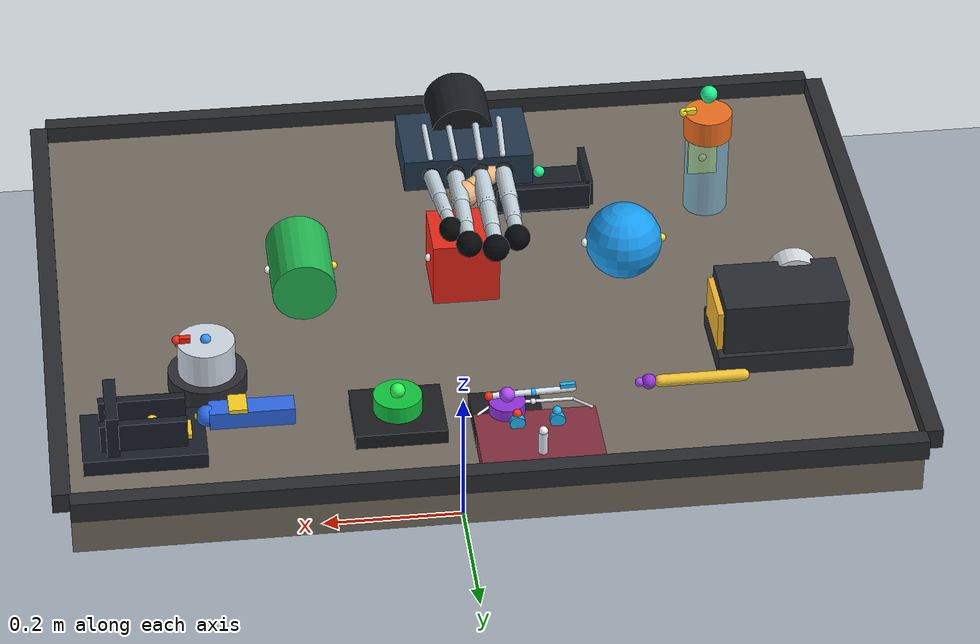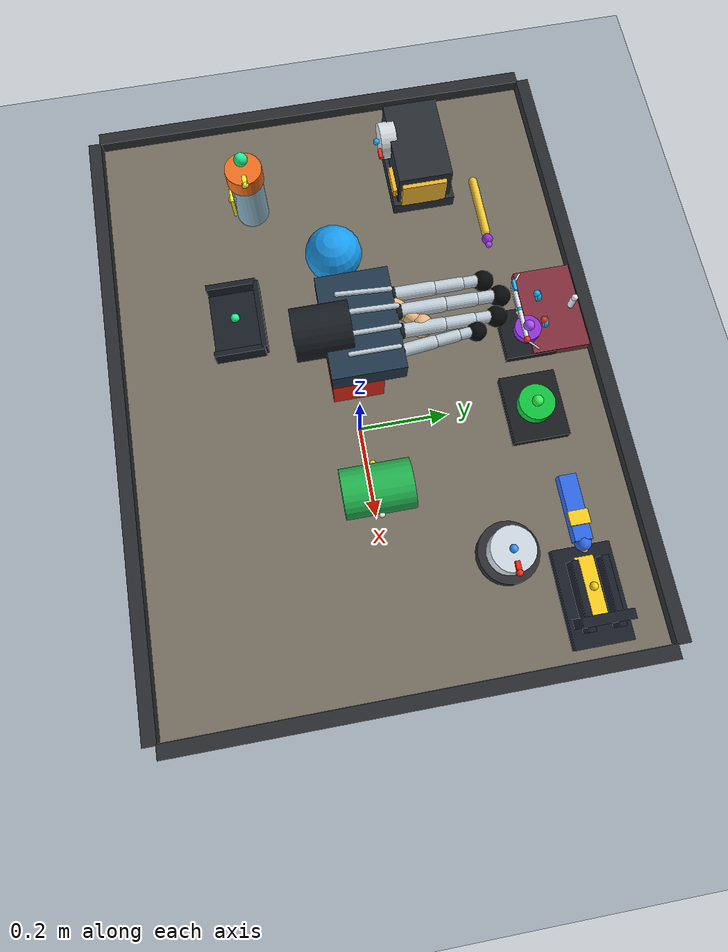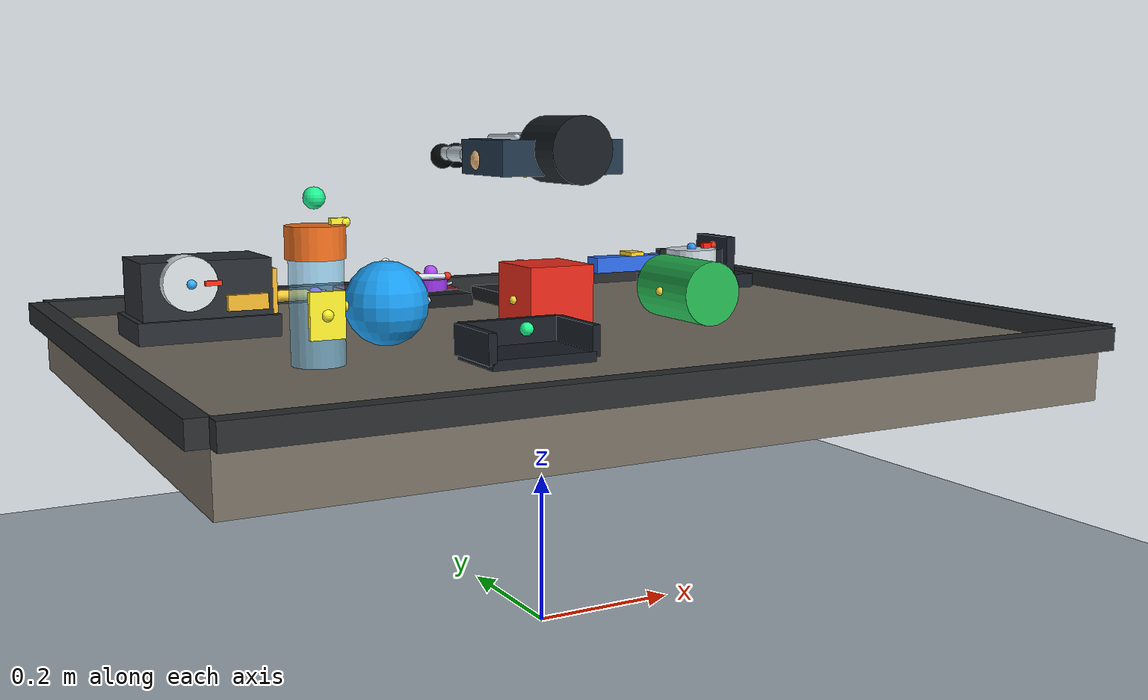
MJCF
<mujoco model="dexhand_lab">
  <compiler angle="degree" autolimits="true"/>
  <option timestep="0.01" integrator="RK4" gravity="0 0 -9.81"/>

  <visual>
    <global offwidth="1280" offheight="720"/>
    <quality shadowsize="2048"/>
  </visual>

  <default>
    <geom friction="1.0 0.04 0.004" solimp="0.9 0.95 0.001" solref="0.02 1"/>
    <joint damping="5" armature="0.01"/>
  </default>

  <asset>
    <texture name="grid_tex" type="2d" builtin="checker" rgb1="0.84 0.86 0.88" rgb2="0.68 0.72 0.76" width="256" height="256"/>
    <material name="floor_mat" texture="grid_tex" texrepeat="5 5" rgba="0.84 0.86 0.88 1"/>
    <material name="table_mat" rgba="0.46 0.43 0.38 1"/>
    <material name="palm_mat" rgba="0.13 0.22 0.30 1"/>
    <material name="finger_mat" rgba="0.78 0.84 0.88 1"/>
    <material name="thumb_mat" rgba="0.92 0.72 0.50 1"/>
    <material name="finger_joint_mat" rgba="0.10 0.12 0.14 1"/>
    <material name="pad_mat" rgba="0.03 0.035 0.04 1"/>
    <material name="sphere_mat" rgba="0.10 0.62 0.95 1"/>
    <material name="cube_mat" rgba="0.92 0.16 0.10 1"/>
    <material name="cylinder_mat" rgba="0.14 0.72 0.32 1"/>
    <material name="stylus_mat" rgba="0.95 0.78 0.20 1"/>
    <material name="button_mat" rgba="0.06 0.78 0.24 1"/>
    <material name="checkpoint_mat" rgba="0.58 0.20 0.88 1"/>
    <material name="cap_base_mat" rgba="0.18 0.18 0.20 1"/>
    <material name="cap_knob_mat" rgba="0.82 0.86 0.90 1"/>
    <material name="cap_marker_mat" rgba="1.00 0.12 0.05 1"/>
    <material name="assembly_plug_mat" rgba="0.18 0.42 0.92 1"/>
    <material name="assembly_socket_mat" rgba="0.10 0.12 0.16 1"/>
    <material name="assembly_marker_mat" rgba="1.00 0.82 0.12 1"/>
    <material name="lock_body_mat" rgba="0.16 0.18 0.20 1"/>
    <material name="lock_dial_mat" rgba="0.86 0.89 0.90 1"/>
    <material name="lock_marker_mat" rgba="1.00 0.18 0.08 1"/>
    <material name="lock_latch_mat" rgba="0.95 0.72 0.18 1"/>
    <material name="vial_glass_mat" rgba="0.50 0.82 1.00 0.58"/>
    <material name="vial_cap_mat" rgba="0.95 0.44 0.12 1"/>
    <material name="vial_marker_mat" rgba="1.00 0.95 0.18 1"/>
    <material name="sample_mat" rgba="0.12 0.96 0.58 1"/>
    <material name="delivery_tray_mat" rgba="0.10 0.12 0.15 1"/>
    <material name="suture_needle_mat" rgba="0.88 0.91 0.96 1"/>
    <material name="suture_tip_mat" rgba="1.00 0.20 0.10 1"/>
    <material name="suture_thread_mat" rgba="0.96 0.96 1.00 1"/>
    <material name="tissue_pad_mat" rgba="0.52 0.18 0.24 1"/>
    <material name="suture_marker_mat" rgba="0.12 0.75 1.00 1"/>
  </asset>

  <worldbody>
    <geom name="floor" type="plane" size="2.0 2.0 0.05" material="floor_mat"/>
    <light name="key_light" pos="0.0 -1.2 1.8" dir="0.0 0.4 -1" diffuse="0.95 0.95 0.92"/>
    <light name="fill_light" pos="-1.0 1.1 1.5" dir="0.5 -0.4 -1" diffuse="0.35 0.40 0.48"/>

    <camera name="front_camera" pos="0.58 -1.52 1.02" xyaxes="0.94 0.34 0 -0.17 0.47 0.86" fovy="66"/>
    <camera name="grasp_camera" pos="0.54 -1.36 0.98" xyaxes="0.94 0.34 0 -0.18 0.47 0.86" fovy="64"/>
    <camera name="cap_camera" pos="0.36 0.145 1.42" xyaxes="1 0 0 0 1 0" fovy="66"/>
    <camera name="assembly_camera" pos="0.76 -0.78 0.98" xyaxes="0.72 0.69 0 -0.38 0.42 0.82" fovy="64"/>
    <camera name="lock_camera" pos="-0.62 -0.86 0.96" xyaxes="0.82 -0.57 0 0.34 0.49 0.80" fovy="64"/>
    <camera name="suture_camera" pos="-0.56 -0.70 0.95" xyaxes="0.77 -0.64 0 0.33 0.39 0.86" fovy="63"/>
    <camera name="top_camera" pos="0.0 0.0 1.96" xyaxes="1 0 0 0 1 0" fovy="66"/>

    <body name="table" pos="0 0 0.36">
      <geom name="table_top" type="box" size="0.55 0.42 0.035" material="table_mat"/>
      <geom name="table_edge_front" type="box" pos="0 -0.43 0.045" size="0.55 0.012 0.014" rgba="0.16 0.17 0.18 1"/>
      <geom name="table_edge_back" type="box" pos="0 0.43 0.045" size="0.55 0.012 0.014" rgba="0.16 0.17 0.18 1"/>
      <geom name="table_edge_left" type="box" pos="-0.56 0 0.045" size="0.012 0.42 0.014" rgba="0.16 0.17 0.18 1"/>
      <geom name="table_edge_right" type="box" pos="0.56 0 0.045" size="0.012 0.42 0.014" rgba="0.16 0.17 0.18 1"/>
    </body>

    <body name="sphere_object" pos="-0.22 -0.01 0.447">
      <freejoint name="sphere_object_joint"/>
      <geom name="sphere_object_geom" type="sphere" size="0.052" material="sphere_mat" mass="0.060"/>
      <geom name="sphere_contact_thumb_marker" type="sphere" pos="-0.052 0 0" size="0.006" rgba="1 0.86 0.20 1" contype="0" conaffinity="0"/>
      <geom name="sphere_contact_finger_marker" type="sphere" pos="0.052 0 0" size="0.006" rgba="1 1 1 1" contype="0" conaffinity="0"/>
      <geom name="sphere_contact_lower_marker" type="sphere" pos="0 -0.030 -0.035" size="0.005" rgba="0.05 0.05 0.05 1" contype="0" conaffinity="0"/>
    </body>

    <body name="cube_object" pos="0.00 -0.01 0.440">
      <freejoint name="cube_object_joint"/>
      <geom name="cube_object_geom" type="box" size="0.045 0.045 0.045" material="cube_mat" mass="0.065"/>
      <geom name="cube_thumb_face_marker" type="sphere" pos="-0.046 0 0" size="0.0055" rgba="1 0.86 0.20 1" contype="0" conaffinity="0"/>
      <geom name="cube_opposing_face_marker" type="sphere" pos="0.046 0 0" size="0.0055" rgba="1 1 1 1" contype="0" conaffinity="0"/>
      <geom name="cube_lower_support_marker" type="sphere" pos="0 -0.026 -0.046" size="0.005" rgba="0.05 0.05 0.05 1" contype="0" conaffinity="0"/>
    </body>

    <body name="cylinder_object" pos="0.22 -0.01 0.438">
      <freejoint name="cylinder_object_joint"/>
      <geom name="cylinder_object_geom" type="cylinder" euler="90 0 0" size="0.043 0.060" material="cylinder_mat" mass="0.065"/>
      <geom name="cylinder_thumb_side_marker" type="sphere" pos="-0.044 0 0" size="0.0055" rgba="1 0.86 0.20 1" contype="0" conaffinity="0"/>
      <geom name="cylinder_opposing_side_marker" type="sphere" pos="0.044 0 0" size="0.0055" rgba="1 1 1 1" contype="0" conaffinity="0"/>
      <geom name="cylinder_lower_support_marker" type="sphere" pos="0 0 -0.044" size="0.005" rgba="0.05 0.05 0.05 1" contype="0" conaffinity="0"/>
    </body>

    <body name="stylus_tool" pos="-0.28 0.28 0.425">
      <freejoint name="stylus_tool_joint"/>
      <geom name="stylus_body_geom" type="capsule" fromto="-0.055 0 0 0.055 0 0" size="0.008" material="stylus_mat" mass="0.018"/>
      <geom name="stylus_tip_geom" type="sphere" pos="0.070 0 0" size="0.010" material="checkpoint_mat"/>
      <site name="stylus_tip_site" pos="0.082 0 0" size="0.006" rgba="0.7 0.3 1 1"/>
    </body>

    <body name="button_station" pos="0.12 0.29 0.405">
      <geom name="button_base_geom" type="box" size="0.060 0.050 0.010" rgba="0.10 0.11 0.12 1"/>
      <body name="button_plunger" pos="0 0 0.024">
        <joint name="button_joint" type="slide" axis="0 0 1" range="-0.018 0.002" damping="6"/>
        <geom name="button_geom" type="cylinder" size="0.032 0.012" material="button_mat"/>
        <site name="button_site" pos="0 0 0.018" size="0.010" rgba="0.2 1.0 0.35 1"/>
      </body>
    </body>

    <body name="checkpoint_target" pos="-0.02 0.31 0.405">
      <geom name="checkpoint_base_geom" type="box" size="0.046 0.046 0.009" rgba="0.10 0.11 0.12 1"/>
      <geom name="checkpoint_geom" type="cylinder" pos="0 0 0.020" size="0.024 0.008" material="checkpoint_mat"/>
      <site name="checkpoint_site" pos="0 0 0.038" size="0.010" rgba="0.7 0.3 1 1"/>
    </body>

    <body name="cap_knob_station" pos="0.36 0.185 0.405">
      <geom name="cap_knob_base_geom" type="cylinder" size="0.052 0.018" material="cap_base_mat"/>
      <body name="cap_knob" pos="0 0 0.040">
        <joint name="cap_knob_joint" type="hinge" axis="0 0 1" range="-6.2832 6.2832" damping="2.5"/>
        <geom name="cap_knob_geom" type="cylinder" size="0.038 0.026" material="cap_knob_mat" mass="0.030"/>
        <geom name="cap_marker_geom" type="box" pos="0.030 0 0.028" size="0.010 0.004 0.006" material="cap_marker_mat"/>
        <site name="cap_marker_site" pos="0.038 0 0.030" size="0.006" rgba="1 0.2 0.1 1"/>
        <site name="cap_center_site" pos="0 0 0.028" size="0.007" rgba="0.2 0.6 1 1"/>
      </body>
    </body>

    <body name="combination_lock_station" pos="-0.40 0.180 0.405">
      <geom name="combination_lock_base_geom" type="box" size="0.090 0.058 0.018" material="lock_body_mat"/>
      <geom name="combination_lock_face_geom" type="box" pos="0 0 0.052" size="0.082 0.050 0.038" material="lock_body_mat"/>
      <body name="combination_lock_dial" pos="-0.026 -0.052 0.064" euler="90 0 0">
        <joint name="combination_lock_dial_joint" type="hinge" axis="0 0 1" range="-6.2832 6.2832" damping="2.2"/>
        <geom name="combination_lock_dial_geom" type="cylinder" size="0.034 0.015" material="lock_dial_mat" mass="0.026"/>
        <geom name="combination_lock_dial_marker_geom" type="box" pos="0.027 0 0.017" size="0.010 0.003 0.004" material="lock_marker_mat"/>
        <site name="combination_lock_dial_site" pos="0 0 0.020" size="0.006" rgba="0.2 0.7 1 1"/>
      </body>
      <body name="combination_lock_latch" pos="0.048 -0.050 0.036">
        <joint name="combination_lock_latch_joint" type="slide" axis="1 0 0" range="0 0.030" damping="7"/>
        <geom name="combination_lock_latch_geom" type="box" size="0.026 0.008 0.010" material="lock_latch_mat" mass="0.015"/>
        <site name="combination_lock_latch_site" pos="0.024 0 0" size="0.005" rgba="1 0.82 0.12 1"/>
      </body>
      <body name="combination_lock_micro_door" pos="0.084 -0.002 0.045">
        <joint name="combination_lock_door_joint" type="hinge" axis="0 0 1" range="0 55" damping="3"/>
        <geom name="combination_lock_micro_door_geom" type="box" size="0.006 0.042 0.030" material="lock_latch_mat" mass="0.018"/>
        <site name="combination_lock_door_site" pos="0 0.036 0" size="0.005" rgba="0.2 1 0.3 1"/>
      </body>
      <site name="combination_lock_center_site" pos="-0.026 -0.052 0.064" size="0.007" rgba="1 0.2 0.1 1"/>
    </body>

    <body name="vial_body" pos="-0.355 -0.145 0.462">
      <freejoint name="vial_body_joint"/>
      <geom name="vial_body_geom" type="cylinder" size="0.030 0.058" material="vial_glass_mat" mass="0.050"/>
      <geom name="vial_body_label_geom" type="box" pos="0.000 -0.031 0.000" size="0.020 0.003 0.026" material="vial_marker_mat" contype="0" conaffinity="0"/>
      <site name="vial_grasp_site" pos="0 -0.032 0.000" size="0.007" rgba="1 0.95 0.18 1"/>
      <site name="vial_mouth_site" pos="0 0 0.064" size="0.007" rgba="0.6 0.9 1 1"/>
    </body>

    <body name="vial_cap" pos="-0.355 -0.145 0.538">
      <freejoint name="vial_cap_joint"/>
      <geom name="vial_cap_geom" type="cylinder" size="0.033 0.018" material="vial_cap_mat" mass="0.020"/>
      <geom name="vial_cap_stripe_geom" type="box" pos="0.026 0 0.020" size="0.009 0.004 0.005" material="vial_marker_mat" contype="0" conaffinity="0"/>
      <site name="vial_cap_marker_site" pos="0.034 0 0.020" size="0.006" rgba="1 0.95 0.18 1"/>
      <site name="vial_cap_center_site" pos="0 0 0" size="0.006" rgba="1 0.45 0.12 1"/>
    </body>

    <body name="micro_sample" pos="-0.355 -0.145 0.585">
      <freejoint name="micro_sample_joint"/>
      <geom name="micro_sample_geom" type="sphere" size="0.012" material="sample_mat" mass="0.006"/>
      <site name="micro_sample_site" pos="0 0 0" size="0.006" rgba="0.12 1 0.58 1"/>
    </body>

    <body name="delivery_tray" pos="-0.130 -0.205 0.405">
      <geom name="delivery_tray_floor_geom" type="box" size="0.065 0.045 0.006" material="delivery_tray_mat"/>
      <geom name="delivery_tray_back_geom" type="box" pos="0 0.045 0.018" size="0.065 0.005 0.018" material="delivery_tray_mat"/>
      <geom name="delivery_tray_left_geom" type="box" pos="-0.065 0 0.018" size="0.005 0.045 0.018" material="delivery_tray_mat"/>
      <geom name="delivery_tray_right_geom" type="box" pos="0.065 0 0.018" size="0.005 0.045 0.018" material="delivery_tray_mat"/>
      <site name="delivery_tray_target_site" pos="0 0 0.030" size="0.008" rgba="0.12 1 0.58 1"/>
    </body>

    <body name="microsuture_needle" pos="-0.055 0.302 0.438" euler="0 1.5708 0">
      <freejoint name="microsuture_needle_joint"/>
      <geom name="microsuture_needle_shaft_geom" type="capsule" fromto="-0.052 0 0 0.052 0 0" size="0.0042" material="suture_needle_mat" mass="0.006"/>
      <geom name="microsuture_needle_tip_geom" type="sphere" pos="0.058 0 0" size="0.006" material="suture_tip_mat"/>
      <geom name="microsuture_needle_tail_marker_geom" type="box" pos="-0.045 0 0.006" size="0.010 0.003 0.003" material="suture_marker_mat" contype="0" conaffinity="0"/>
      <site name="microsuture_needle_tip_site" pos="0.058 0 0" size="0.005" rgba="1 0.20 0.10 1"/>
      <site name="microsuture_needle_center_site" pos="0 0 0" size="0.005" rgba="0.12 0.75 1 1"/>
    </body>

    <body name="suture_thread" pos="-0.055 0.302 0.423">
      <freejoint name="suture_thread_joint"/>
      <geom name="suture_thread_span_geom" type="capsule" fromto="-0.052 0 0 0.052 0 0" size="0.0022" material="suture_thread_mat" mass="0.003"/>
      <geom name="suture_thread_loop_left_geom" type="capsule" fromto="-0.052 0 0 -0.074 0.020 0" size="0.0018" material="suture_thread_mat"/>
      <geom name="suture_thread_loop_right_geom" type="capsule" fromto="0.052 0 0 0.074 0.020 0" size="0.0018" material="suture_thread_mat"/>
      <site name="suture_thread_center_site" pos="0 0 0" size="0.004" rgba="0.96 0.96 1 1"/>
    </body>

    <body name="tissue_pad_station" pos="-0.055 0.365 0.405">
      <geom name="tissue_pad_geom" type="box" size="0.080 0.052 0.012" material="tissue_pad_mat"/>
      <geom name="suture_entry_eyelet_geom" type="cylinder" pos="-0.026 -0.020 0.019" euler="90 0 0" size="0.010 0.004" material="suture_marker_mat"/>
      <geom name="suture_exit_eyelet_geom" type="cylinder" pos="0.026 -0.020 0.019" euler="90 0 0" size="0.010 0.004" material="suture_marker_mat"/>
      <geom name="suture_anchor_post_geom" type="cylinder" pos="0 0.036 0.024" size="0.006 0.020" material="suture_needle_mat"/>
      <site name="suture_entry_site" pos="-0.026 -0.024 0.030" size="0.006" rgba="0.12 0.75 1 1"/>
      <site name="suture_exit_site" pos="0.026 -0.024 0.030" size="0.006" rgba="1 0.20 0.10 1"/>
      <site name="suture_tension_anchor_site" pos="0 0.036 0.046" size="0.006" rgba="1 1 1 1"/>
    </body>

    <body name="assembly_plug" pos="0.31 0.305 0.440">
      <freejoint name="assembly_plug_joint"/>
      <geom name="assembly_plug_geom" type="box" size="0.055 0.015 0.012" material="assembly_plug_mat" mass="0.026"/>
      <geom name="assembly_plug_round_tip_geom" type="sphere" pos="0.058 0 0" size="0.014" material="assembly_plug_mat"/>
      <geom name="assembly_plug_key_marker" type="box" pos="0.018 0 0.015" size="0.012 0.017 0.003" material="assembly_marker_mat" contype="0" conaffinity="0"/>
      <site name="assembly_plug_center_site" pos="0 0 0" size="0.006" rgba="0.2 0.7 1 1"/>
      <site name="assembly_plug_tip_site" pos="0.068 0 0" size="0.006" rgba="1 0.82 0.12 1"/>
    </body>

    <body name="assembly_socket_station" pos="0.45 0.305 0.405">
      <geom name="assembly_socket_base_geom" type="box" size="0.080 0.050 0.012" material="assembly_socket_mat"/>
      <geom name="assembly_socket_back_wall_geom" type="box" pos="0.040 0 0.040" size="0.008 0.043 0.032" material="assembly_socket_mat"/>
      <geom name="assembly_socket_left_guide_geom" type="box" pos="0 -0.025 0.030" size="0.056 0.006 0.022" material="assembly_socket_mat"/>
      <geom name="assembly_socket_right_guide_geom" type="box" pos="0 0.025 0.030" size="0.056 0.006 0.022" material="assembly_socket_mat"/>
      <geom name="assembly_socket_floor_marker_geom" type="box" pos="-0.010 0 0.015" size="0.052 0.016 0.003" material="assembly_marker_mat" contype="0" conaffinity="0"/>
      <site name="assembly_socket_center_site" pos="-0.012 0 0.034" size="0.007" rgba="1 0.82 0.12 1"/>
      <site name="assembly_socket_depth_site" pos="0.040 0 0.034" size="0.005" rgba="0.2 1 0.3 1"/>
    </body>

    <body name="palm_body" pos="0 0 0.620">
      <joint name="hand_x" type="slide" axis="1 0 0" range="-0.40 0.40" damping="8"/>
      <joint name="hand_y" type="slide" axis="0 1 0" range="-0.22 0.34" damping="8"/>
      <joint name="hand_z" type="slide" axis="0 0 1" range="-0.13 0.06" damping="8"/>
      <joint name="wrist_yaw" type="hinge" axis="0 0 1" range="-35 35" damping="5"/>
      <joint name="wrist_pitch" type="hinge" axis="1 0 0" range="-25 25" damping="5"/>
      <joint name="wrist_roll" type="hinge" axis="0 1 0" range="-25 25" damping="5"/>
      <geom name="wrist_mount_geom" type="cylinder" pos="0 -0.060 0.010" euler="90 0 0" size="0.042 0.045" material="finger_joint_mat" contype="0" conaffinity="0"/>
      <geom name="palm_geom" type="box" pos="0 0 0" size="0.085 0.058 0.022" material="palm_mat" contype="0" conaffinity="0"/>
      <geom name="index_metacarpal_rail" type="capsule" fromto="-0.050 -0.028 0.025 -0.045 0.055 0.024" size="0.004" material="finger_mat" contype="0" conaffinity="0"/>
      <geom name="middle_metacarpal_rail" type="capsule" fromto="-0.018 -0.032 0.026 -0.015 0.060 0.025" size="0.0045" material="finger_mat" contype="0" conaffinity="0"/>
      <geom name="ring_metacarpal_rail" type="capsule" fromto="0.018 -0.030 0.025 0.018 0.058 0.024" size="0.004" material="finger_mat" contype="0" conaffinity="0"/>
      <geom name="little_metacarpal_rail" type="capsule" fromto="0.050 -0.024 0.023 0.050 0.052 0.022" size="0.0038" material="finger_mat" contype="0" conaffinity="0"/>
      <site name="palm_center_site" pos="0 0.045 -0.020" size="0.008" rgba="1 0.9 0.2 1"/>

      <body name="thumb_metacarpal" pos="-0.075 0.018 -0.004" euler="0 0 -48">
        <joint name="thumb_cmc_opposition" type="hinge" axis="-1 0 0" range="0 85" damping="4"/>
        <joint name="thumb_cmc_abduction" type="hinge" axis="0 0 1" range="-10 45" damping="4"/>
        <geom name="thumb_cmc_joint_geom" type="sphere" size="0.016" material="thumb_mat" contype="0" conaffinity="0"/>
        <geom name="thumb_proximal_geom" type="capsule" fromto="0 0 0 0 0.045 0" size="0.014" material="thumb_mat" contype="0" conaffinity="0"/>
        <body name="thumb_proximal" pos="0 0.045 0">
          <joint name="thumb_mcp_flexion" type="hinge" axis="-1 0 0" range="0 85" damping="4"/>
          <geom name="thumb_mcp_joint_geom" type="sphere" size="0.014" material="thumb_mat" contype="0" conaffinity="0"/>
          <geom name="thumb_middle_geom" type="capsule" fromto="0 0 0 0 0.039 0" size="0.013" material="thumb_mat" contype="0" conaffinity="0"/>
          <body name="thumb_distal" pos="0 0.039 0">
            <joint name="thumb_ip_flexion" type="hinge" axis="-1 0 0" range="0 80" damping="4"/>
            <geom name="thumb_ip_joint_geom" type="sphere" size="0.012" material="thumb_mat" contype="0" conaffinity="0"/>
            <geom name="thumb_distal_geom" type="capsule" fromto="0 0 0 0 0.028 0" size="0.012" material="thumb_mat" contype="0" conaffinity="0"/>
            <geom name="thumb_tip_pad" type="sphere" pos="0 0.032 -0.004" size="0.019" material="thumb_mat" contype="1" conaffinity="1"/>
            <site name="thumb_tip_site" pos="0 0.034 -0.004" size="0.006" rgba="1 1 1 1"/>
          </body>
        </body>
      </body>

      <body name="index_metacarpal" pos="-0.045 0.058 0.000">
        <joint name="index_mcp_abduction" type="hinge" axis="0 0 1" range="-16 16" damping="4"/>
        <joint name="index_mcp_flexion" type="hinge" axis="-1 0 0" range="0 95" damping="4"/>
        <geom name="index_mcp_joint_geom" type="sphere" size="0.013" material="finger_joint_mat" contype="0" conaffinity="0"/>
        <geom name="index_proximal_geom" type="capsule" fromto="0 0 0 0 0.065 0" size="0.0115" material="finger_mat" contype="0" conaffinity="0"/>
        <body name="index_middle" pos="0 0.065 0">
          <joint name="index_pip_flexion" type="hinge" axis="-1 0 0" range="0 100" damping="4"/>
          <geom name="index_pip_joint_geom" type="sphere" size="0.011" material="finger_joint_mat" contype="0" conaffinity="0"/>
          <geom name="index_middle_geom" type="capsule" fromto="0 0 0 0 0.046 0" size="0.0105" material="finger_mat" contype="0" conaffinity="0"/>
          <body name="index_distal" pos="0 0.046 0">
            <joint name="index_dip_flexion" type="hinge" axis="-1 0 0" range="0 85" damping="4"/>
            <geom name="index_dip_joint_geom" type="sphere" size="0.0095" material="finger_joint_mat" contype="0" conaffinity="0"/>
            <geom name="index_distal_geom" type="capsule" fromto="0 0 0 0 0.033 0" size="0.0095" material="finger_mat" contype="0" conaffinity="0"/>
            <geom name="index_tip_pad" type="sphere" pos="0 0.037 -0.004" size="0.017" material="pad_mat" contype="1" conaffinity="1"/>
            <site name="index_tip_site" pos="0 0.039 -0.004" size="0.006" rgba="1 1 1 1"/>
          </body>
        </body>
      </body>

      <body name="middle_metacarpal" pos="-0.015 0.062 0.000">
        <joint name="middle_mcp_abduction" type="hinge" axis="0 0 1" range="-12 12" damping="4"/>
        <joint name="middle_mcp_flexion" type="hinge" axis="-1 0 0" range="0 100" damping="4"/>
        <geom name="middle_mcp_joint_geom" type="sphere" size="0.0135" material="finger_joint_mat" contype="0" conaffinity="0"/>
        <geom name="middle_proximal_geom" type="capsule" fromto="0 0 0 0 0.072 0" size="0.012" material="finger_mat" contype="0" conaffinity="0"/>
        <body name="middle_middle" pos="0 0.072 0">
          <joint name="middle_pip_flexion" type="hinge" axis="-1 0 0" range="0 105" damping="4"/>
          <geom name="middle_pip_joint_geom" type="sphere" size="0.0115" material="finger_joint_mat" contype="0" conaffinity="0"/>
          <geom name="middle_middle_geom" type="capsule" fromto="0 0 0 0 0.051 0" size="0.011" material="finger_mat" contype="0" conaffinity="0"/>
          <body name="middle_distal" pos="0 0.051 0">
            <joint name="middle_dip_flexion" type="hinge" axis="-1 0 0" range="0 90" damping="4"/>
            <geom name="middle_dip_joint_geom" type="sphere" size="0.010" material="finger_joint_mat" contype="0" conaffinity="0"/>
            <geom name="middle_distal_geom" type="capsule" fromto="0 0 0 0 0.037 0" size="0.010" material="finger_mat" contype="0" conaffinity="0"/>
            <geom name="middle_tip_pad" type="sphere" pos="0 0.041 -0.004" size="0.0175" material="pad_mat" contype="1" conaffinity="1"/>
            <site name="middle_tip_site" pos="0 0.043 -0.004" size="0.006" rgba="1 1 1 1"/>
          </body>
        </body>
      </body>

      <body name="ring_metacarpal" pos="0.018 0.060 0.000">
        <joint name="ring_mcp_abduction" type="hinge" axis="0 0 1" range="-12 14" damping="4"/>
        <joint name="ring_mcp_flexion" type="hinge" axis="-1 0 0" range="0 98" damping="4"/>
        <geom name="ring_mcp_joint_geom" type="sphere" size="0.013" material="finger_joint_mat" contype="0" conaffinity="0"/>
        <geom name="ring_proximal_geom" type="capsule" fromto="0 0 0 0 0.067 0" size="0.0115" material="finger_mat" contype="0" conaffinity="0"/>
        <body name="ring_middle" pos="0 0.067 0">
          <joint name="ring_pip_flexion" type="hinge" axis="-1 0 0" range="0 102" damping="4"/>
          <geom name="ring_pip_joint_geom" type="sphere" size="0.011" material="finger_joint_mat" contype="0" conaffinity="0"/>
          <geom name="ring_middle_geom" type="capsule" fromto="0 0 0 0 0.048 0" size="0.0105" material="finger_mat" contype="0" conaffinity="0"/>
          <body name="ring_distal" pos="0 0.048 0">
            <joint name="ring_dip_flexion" type="hinge" axis="-1 0 0" range="0 88" damping="4"/>
            <geom name="ring_dip_joint_geom" type="sphere" size="0.0095" material="finger_joint_mat" contype="0" conaffinity="0"/>
            <geom name="ring_distal_geom" type="capsule" fromto="0 0 0 0 0.034 0" size="0.0095" material="finger_mat" contype="0" conaffinity="0"/>
            <geom name="ring_tip_pad" type="sphere" pos="0 0.038 -0.004" size="0.017" material="pad_mat" contype="1" conaffinity="1"/>
            <site name="ring_tip_site" pos="0 0.040 -0.004" size="0.006" rgba="1 1 1 1"/>
          </body>
        </body>
      </body>

      <body name="little_metacarpal" pos="0.050 0.054 0.000" euler="0 0 6">
        <joint name="little_mcp_abduction" type="hinge" axis="0 0 1" range="-14 18" damping="4"/>
        <joint name="little_mcp_flexion" type="hinge" axis="-1 0 0" range="0 96" damping="4"/>
        <geom name="little_mcp_joint_geom" type="sphere" size="0.012" material="finger_joint_mat" contype="0" conaffinity="0"/>
        <geom name="little_proximal_geom" type="capsule" fromto="0 0 0 0 0.054 0" size="0.0105" material="finger_mat" contype="0" conaffinity="0"/>
        <body name="little_middle" pos="0 0.054 0">
          <joint name="little_pip_flexion" type="hinge" axis="-1 0 0" range="0 100" damping="4"/>
          <geom name="little_pip_joint_geom" type="sphere" size="0.010" material="finger_joint_mat" contype="0" conaffinity="0"/>
          <geom name="little_middle_geom" type="capsule" fromto="0 0 0 0 0.038 0" size="0.0095" material="finger_mat" contype="0" conaffinity="0"/>
          <body name="little_distal" pos="0 0.038 0">
            <joint name="little_dip_flexion" type="hinge" axis="-1 0 0" range="0 85" damping="4"/>
            <geom name="little_dip_joint_geom" type="sphere" size="0.0085" material="finger_joint_mat" contype="0" conaffinity="0"/>
            <geom name="little_distal_geom" type="capsule" fromto="0 0 0 0 0.028 0" size="0.0085" material="finger_mat" contype="0" conaffinity="0"/>
            <geom name="little_tip_pad" type="sphere" pos="0 0.032 -0.004" size="0.016" material="pad_mat" contype="1" conaffinity="1"/>
            <site name="little_tip_site" pos="0 0.034 -0.004" size="0.006" rgba="1 1 1 1"/>
          </body>
        </body>
      </body>
    </body>
  </worldbody>

  <sensor>
    <touch name="touch_thumb_tip" site="thumb_tip_site"/>
    <touch name="touch_index_tip" site="index_tip_site"/>
    <touch name="touch_middle_tip" site="middle_tip_site"/>
    <touch name="touch_ring_tip" site="ring_tip_site"/>
    <touch name="touch_little_tip" site="little_tip_site"/>
  </sensor>

  <actuator>
    <position name="act_hand_x" joint="hand_x" kp="160" ctrlrange="-0.40 0.40"/>
    <position name="act_hand_y" joint="hand_y" kp="160" ctrlrange="-0.22 0.34"/>
    <position name="act_hand_z" joint="hand_z" kp="160" ctrlrange="-0.13 0.06"/>
    <position name="act_wrist_yaw" joint="wrist_yaw" kp="80" ctrlrange="-0.6109 0.6109"/>
    <position name="act_wrist_pitch" joint="wrist_pitch" kp="80" ctrlrange="-0.4363 0.4363"/>
    <position name="act_wrist_roll" joint="wrist_roll" kp="80" ctrlrange="-0.4363 0.4363"/>
    <position name="act_thumb_cmc_opposition" joint="thumb_cmc_opposition" kp="65" ctrlrange="0 1.4835"/>
    <position name="act_thumb_cmc_abduction" joint="thumb_cmc_abduction" kp="65" ctrlrange="-0.1745 0.7854"/>
    <position name="act_thumb_mcp_flexion" joint="thumb_mcp_flexion" kp="65" ctrlrange="0 1.4835"/>
    <position name="act_thumb_ip_flexion" joint="thumb_ip_flexion" kp="65" ctrlrange="0 1.3963"/>
    <position name="act_index_mcp_abduction" joint="index_mcp_abduction" kp="65" ctrlrange="-0.2793 0.2793"/>
    <position name="act_index_mcp_flexion" joint="index_mcp_flexion" kp="65" ctrlrange="0 1.6581"/>
    <position name="act_index_pip_flexion" joint="index_pip_flexion" kp="65" ctrlrange="0 1.7453"/>
    <position name="act_index_dip_flexion" joint="index_dip_flexion" kp="65" ctrlrange="0 1.4835"/>
    <position name="act_middle_mcp_abduction" joint="middle_mcp_abduction" kp="65" ctrlrange="-0.2094 0.2094"/>
    <position name="act_middle_mcp_flexion" joint="middle_mcp_flexion" kp="65" ctrlrange="0 1.7453"/>
    <position name="act_middle_pip_flexion" joint="middle_pip_flexion" kp="65" ctrlrange="0 1.8326"/>
    <position name="act_middle_dip_flexion" joint="middle_dip_flexion" kp="65" ctrlrange="0 1.5708"/>
    <position name="act_ring_mcp_abduction" joint="ring_mcp_abduction" kp="65" ctrlrange="-0.2094 0.2443"/>
    <position name="act_ring_mcp_flexion" joint="ring_mcp_flexion" kp="65" ctrlrange="0 1.7104"/>
    <position name="act_ring_pip_flexion" joint="ring_pip_flexion" kp="65" ctrlrange="0 1.7802"/>
    <position name="act_ring_dip_flexion" joint="ring_dip_flexion" kp="65" ctrlrange="0 1.5359"/>
    <position name="act_little_mcp_abduction" joint="little_mcp_abduction" kp="65" ctrlrange="-0.2443 0.3142"/>
    <position name="act_little_mcp_flexion" joint="little_mcp_flexion" kp="65" ctrlrange="0 1.6755"/>
    <position name="act_little_pip_flexion" joint="little_pip_flexion" kp="65" ctrlrange="0 1.7453"/>
    <position name="act_little_dip_flexion" joint="little_dip_flexion" kp="65" ctrlrange="0 1.4835"/>
  </actuator>
</mujoco>
